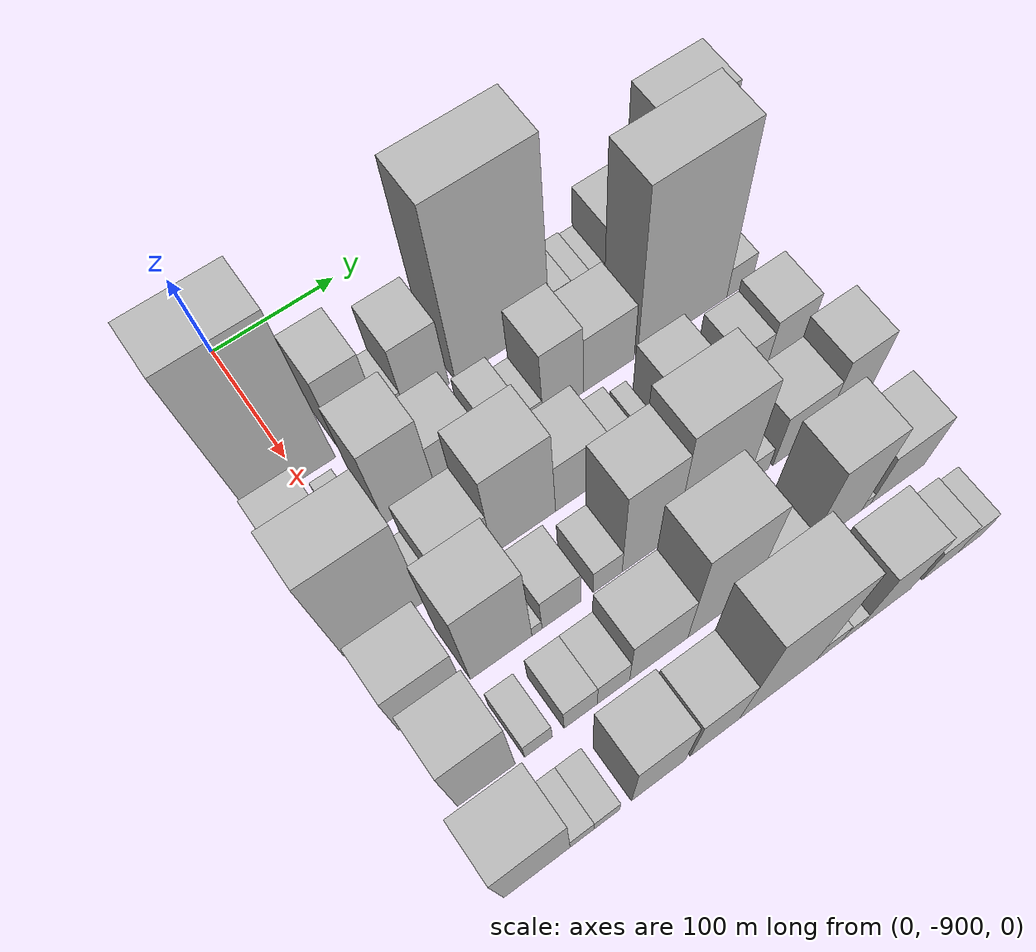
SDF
<sdf version="1.6">
 <world name="default">
  <model name="building_1">
   <static>1</static>
   <pose>100.0000 -905.9487 0 0.000000 0.000000 0.000000</pose>
   <link name="link">
    <pose>0 0 105.00 0 0 0</pose>
    <collision name="collision"><geometry><box><size>40.0000 68.1026 210.0000</size></box></geometry></collision>
    <visual name="visual">
     <cast_shadows>0</cast_shadows>
     <geometry><box><size>40.0000 68.1026 210.0000</size></box></geometry>
     <material>
      <script>
       <uri>model://HANNAS_wall/materials/scripts</uri>
       <uri>model://HANNAS_wall/materials/textures</uri>
       <name>vrc/HANNAS_wall</name>
      </script>
     </material>
    </visual>
   </link>
  </model>
  <model name="building_2">
   <static>1</static>
   <pose>100.0000 -850.0106 0 0.000000 0.000000 0.000000</pose>
   <link name="link">
    <pose>0 0 55.50 0 0 0</pose>
    <collision name="collision"><geometry><box><size>40.0000 33.7737 111.0000</size></box></geometry></collision>
    <visual name="visual">
     <cast_shadows>0</cast_shadows>
     <geometry><box><size>40.0000 33.7737 111.0000</size></box></geometry>
     <material>
      <script>
       <uri>model://HANNAS_wall/materials/scripts</uri>
       <uri>model://HANNAS_wall/materials/textures</uri>
       <name>vrc/HANNAS_wall</name>
      </script>
     </material>
    </visual>
   </link>
  </model>
  <model name="building_3">
   <static>1</static>
   <pose>100.0000 -824.1714 0 0.000000 0.000000 0.000000</pose>
   <link name="link">
    <pose>0 0 16.50 0 0 0</pose>
    <collision name="collision"><geometry><box><size>40.0000 17.9045 33.0000</size></box></geometry></collision>
    <visual name="visual">
     <cast_shadows>0</cast_shadows>
     <geometry><box><size>40.0000 17.9045 33.0000</size></box></geometry>
     <material>
      <script>
       <uri>model://HANNAS_wall/materials/scripts</uri>
       <uri>model://HANNAS_wall/materials/textures</uri>
       <name>vrc/HANNAS_wall</name>
      </script>
     </material>
    </visual>
   </link>
  </model>
  <model name="building_4">
   <static>1</static>
   <pose>100.0000 -797.0768 0 0.000000 0.000000 0.000000</pose>
   <link name="link">
    <pose>0 0 46.50 0 0 0</pose>
    <collision name="collision"><geometry><box><size>40.0000 36.2848 93.0000</size></box></geometry></collision>
    <visual name="visual">
     <cast_shadows>0</cast_shadows>
     <geometry><box><size>40.0000 36.2848 93.0000</size></box></geometry>
     <material>
      <script>
       <uri>model://HANNAS_wall/materials/scripts</uri>
       <uri>model://HANNAS_wall/materials/textures</uri>
       <name>vrc/HANNAS_wall</name>
      </script>
     </material>
    </visual>
   </link>
  </model>
  <model name="building_5">
   <static>1</static>
   <pose>100.0000 -733.5648 0 0.000000 0.000000 0.000000</pose>
   <link name="link">
    <pose>0 0 109.50 0 0 0</pose>
    <collision name="collision"><geometry><box><size>40.0000 80.7393 219.0000</size></box></geometry></collision>
    <visual name="visual">
     <cast_shadows>0</cast_shadows>
     <geometry><box><size>40.0000 80.7393 219.0000</size></box></geometry>
     <material>
      <script>
       <uri>model://HANNAS_wall/materials/scripts</uri>
       <uri>model://HANNAS_wall/materials/textures</uri>
       <name>vrc/HANNAS_wall</name>
      </script>
     </material>
    </visual>
   </link>
  </model>
  <model name="building_6">
   <static>1</static>
   <pose>100.0000 -683.4348 0 0.000000 0.000000 0.000000</pose>
   <link name="link">
    <pose>0 0 18.00 0 0 0</pose>
    <collision name="collision"><geometry><box><size>40.0000 19.5208 36.0000</size></box></geometry></collision>
    <visual name="visual">
     <cast_shadows>0</cast_shadows>
     <geometry><box><size>40.0000 19.5208 36.0000</size></box></geometry>
     <material>
      <script>
       <uri>model://HANNAS_wall/materials/scripts</uri>
       <uri>model://HANNAS_wall/materials/textures</uri>
       <name>vrc/HANNAS_wall</name>
      </script>
     </material>
    </visual>
   </link>
  </model>
  <model name="building_7">
   <static>1</static>
   <pose>100.0000 -665.0878 0 0.000000 0.000000 0.000000</pose>
   <link name="link">
    <pose>0 0 15.00 0 0 0</pose>
    <collision name="collision"><geometry><box><size>40.0000 17.1732 30.0000</size></box></geometry></collision>
    <visual name="visual">
     <cast_shadows>0</cast_shadows>
     <geometry><box><size>40.0000 17.1732 30.0000</size></box></geometry>
     <material>
      <script>
       <uri>model://HANNAS_wall/materials/scripts</uri>
       <uri>model://HANNAS_wall/materials/textures</uri>
       <name>vrc/HANNAS_wall</name>
      </script>
     </material>
    </visual>
   </link>
  </model>
  <model name="building_8">
   <static>1</static>
   <pose>100.0000 -650.2125 0 0.000000 0.000000 0.000000</pose>
   <link name="link">
    <pose>0 0 13.50 0 0 0</pose>
    <collision name="collision"><geometry><box><size>40.0000 12.5774 27.0000</size></box></geometry></collision>
    <visual name="visual">
     <cast_shadows>0</cast_shadows>
     <geometry><box><size>40.0000 12.5774 27.0000</size></box></geometry>
     <material>
      <script>
       <uri>model://HANNAS_wall/materials/scripts</uri>
       <uri>model://HANNAS_wall/materials/textures</uri>
       <name>vrc/HANNAS_wall</name>
      </script>
     </material>
    </visual>
   </link>
  </model>
  <model name="building_9">
   <static>1</static>
   <pose>100.0000 -621.8262 0 0.000000 0.000000 0.000000</pose>
   <link name="link">
    <pose>0 0 37.50 0 0 0</pose>
    <collision name="collision"><geometry><box><size>40.0000 44.1953 75.0000</size></box></geometry></collision>
    <visual name="visual">
     <cast_shadows>0</cast_shadows>
     <geometry><box><size>40.0000 44.1953 75.0000</size></box></geometry>
     <material>
      <script>
       <uri>model://HANNAS_wall/materials/scripts</uri>
       <uri>model://HANNAS_wall/materials/textures</uri>
       <name>vrc/HANNAS_wall</name>
      </script>
     </material>
    </visual>
   </link>
  </model>
  <model name="building_10">
   <static>1</static>
   <pose>100.0000 -568.2450 0 0.000000 0.000000 0.000000</pose>
   <link name="link">
    <pose>0 0 75.00 0 0 0</pose>
    <collision name="collision"><geometry><box><size>40.0000 56.9672 150.0000</size></box></geometry></collision>
    <visual name="visual">
     <cast_shadows>0</cast_shadows>
     <geometry><box><size>40.0000 56.9672 150.0000</size></box></geometry>
     <material>
      <script>
       <uri>model://HANNAS_wall/materials/scripts</uri>
       <uri>model://HANNAS_wall/materials/textures</uri>
       <name>vrc/HANNAS_wall</name>
      </script>
     </material>
    </visual>
   </link>
  </model>
  <model name="building_52">
   <static>1</static>
   <pose>160.0000 -921.2641 0 0.000000 0.000000 0.000000</pose>
   <link name="link">
    <pose>0 0 34.50 0 0 0</pose>
    <collision name="collision"><geometry><box><size>40.0000 37.4718 69.0000</size></box></geometry></collision>
    <visual name="visual">
     <cast_shadows>0</cast_shadows>
     <geometry><box><size>40.0000 37.4718 69.0000</size></box></geometry>
     <material>
      <script>
       <uri>model://HANNAS_wall/materials/scripts</uri>
       <uri>model://HANNAS_wall/materials/textures</uri>
       <name>vrc/HANNAS_wall</name>
      </script>
     </material>
    </visual>
   </link>
  </model>
  <model name="building_53">
   <static>1</static>
   <pose>160.0000 -889.0243 0 0.000000 0.000000 0.000000</pose>
   <link name="link">
    <pose>0 0 16.50 0 0 0</pose>
    <collision name="collision"><geometry><box><size>40.0000 17.0077 33.0000</size></box></geometry></collision>
    <visual name="visual">
     <cast_shadows>0</cast_shadows>
     <geometry><box><size>40.0000 17.0077 33.0000</size></box></geometry>
     <material>
      <script>
       <uri>model://HANNAS_wall/materials/scripts</uri>
       <uri>model://HANNAS_wall/materials/textures</uri>
       <name>vrc/HANNAS_wall</name>
      </script>
     </material>
    </visual>
   </link>
  </model>
  <model name="building_54">
   <static>1</static>
   <pose>160.0000 -850.0451 0 0.000000 0.000000 0.000000</pose>
   <link name="link">
    <pose>0 0 58.50 0 0 0</pose>
    <collision name="collision"><geometry><box><size>40.0000 40.9506 117.0000</size></box></geometry></collision>
    <visual name="visual">
     <cast_shadows>0</cast_shadows>
     <geometry><box><size>40.0000 40.9506 117.0000</size></box></geometry>
     <material>
      <script>
       <uri>model://HANNAS_wall/materials/scripts</uri>
       <uri>model://HANNAS_wall/materials/textures</uri>
       <name>vrc/HANNAS_wall</name>
      </script>
     </material>
    </visual>
   </link>
  </model>
  <model name="building_55">
   <static>1</static>
   <pose>160.0000 -811.3277 0 0.000000 0.000000 0.000000</pose>
   <link name="link">
    <pose>0 0 36.00 0 0 0</pose>
    <collision name="collision"><geometry><box><size>40.0000 36.4842 72.0000</size></box></geometry></collision>
    <visual name="visual">
     <cast_shadows>0</cast_shadows>
     <geometry><box><size>40.0000 36.4842 72.0000</size></box></geometry>
     <material>
      <script>
       <uri>model://HANNAS_wall/materials/scripts</uri>
       <uri>model://HANNAS_wall/materials/textures</uri>
       <name>vrc/HANNAS_wall</name>
      </script>
     </material>
    </visual>
   </link>
  </model>
  <model name="building_56">
   <static>1</static>
   <pose>160.0000 -771.5439 0 0.000000 0.000000 0.000000</pose>
   <link name="link">
    <pose>0 0 25.50 0 0 0</pose>
    <collision name="collision"><geometry><box><size>40.0000 27.0834 51.0000</size></box></geometry></collision>
    <visual name="visual">
     <cast_shadows>0</cast_shadows>
     <geometry><box><size>40.0000 27.0834 51.0000</size></box></geometry>
     <material>
      <script>
       <uri>model://HANNAS_wall/materials/scripts</uri>
       <uri>model://HANNAS_wall/materials/textures</uri>
       <name>vrc/HANNAS_wall</name>
      </script>
     </material>
    </visual>
   </link>
  </model>
  <model name="building_57">
   <static>1</static>
   <pose>160.0000 -749.5987 0 0.000000 0.000000 0.000000</pose>
   <link name="link">
    <pose>0 0 15.00 0 0 0</pose>
    <collision name="collision"><geometry><box><size>40.0000 16.8070 30.0000</size></box></geometry></collision>
    <visual name="visual">
     <cast_shadows>0</cast_shadows>
     <geometry><box><size>40.0000 16.8070 30.0000</size></box></geometry>
     <material>
      <script>
       <uri>model://HANNAS_wall/materials/scripts</uri>
       <uri>model://HANNAS_wall/materials/textures</uri>
       <name>vrc/HANNAS_wall</name>
      </script>
     </material>
    </visual>
   </link>
  </model>
  <model name="building_58">
   <static>1</static>
   <pose>160.0000 -724.1548 0 0.000000 0.000000 0.000000</pose>
   <link name="link">
    <pose>0 0 48.00 0 0 0</pose>
    <collision name="collision"><geometry><box><size>40.0000 34.0807 96.0000</size></box></geometry></collision>
    <visual name="visual">
     <cast_shadows>0</cast_shadows>
     <geometry><box><size>40.0000 34.0807 96.0000</size></box></geometry>
     <material>
      <script>
       <uri>model://HANNAS_wall/materials/scripts</uri>
       <uri>model://HANNAS_wall/materials/textures</uri>
       <name>vrc/HANNAS_wall</name>
      </script>
     </material>
    </visual>
   </link>
  </model>
  <model name="building_59">
   <static>1</static>
   <pose>160.0000 -684.9821 0 0.000000 0.000000 0.000000</pose>
   <link name="link">
    <pose>0 0 39.00 0 0 0</pose>
    <collision name="collision"><geometry><box><size>40.0000 44.2648 78.0000</size></box></geometry></collision>
    <visual name="visual">
     <cast_shadows>0</cast_shadows>
     <geometry><box><size>40.0000 44.2648 78.0000</size></box></geometry>
     <material>
      <script>
       <uri>model://HANNAS_wall/materials/scripts</uri>
       <uri>model://HANNAS_wall/materials/textures</uri>
       <name>vrc/HANNAS_wall</name>
      </script>
     </material>
    </visual>
   </link>
  </model>
  <model name="building_60">
   <static>1</static>
   <pose>160.0000 -619.7478 0 0.000000 0.000000 0.000000</pose>
   <link name="link">
    <pose>0 0 105.00 0 0 0</pose>
    <collision name="collision"><geometry><box><size>40.0000 80.2037 210.0000</size></box></geometry></collision>
    <visual name="visual">
     <cast_shadows>0</cast_shadows>
     <geometry><box><size>40.0000 80.2037 210.0000</size></box></geometry>
     <material>
      <script>
       <uri>model://HANNAS_wall/materials/scripts</uri>
       <uri>model://HANNAS_wall/materials/textures</uri>
       <name>vrc/HANNAS_wall</name>
      </script>
     </material>
    </visual>
   </link>
  </model>
  <model name="building_61">
   <static>1</static>
   <pose>160.0000 -567.9980 0 0.000000 0.000000 0.000000</pose>
   <link name="link">
    <pose>0 0 19.50 0 0 0</pose>
    <collision name="collision"><geometry><box><size>40.0000 23.2958 39.0000</size></box></geometry></collision>
    <visual name="visual">
     <cast_shadows>0</cast_shadows>
     <geometry><box><size>40.0000 23.2958 39.0000</size></box></geometry>
     <material>
      <script>
       <uri>model://HANNAS_wall/materials/scripts</uri>
       <uri>model://HANNAS_wall/materials/textures</uri>
       <name>vrc/HANNAS_wall</name>
      </script>
     </material>
    </visual>
   </link>
  </model>
  <model name="building_103">
   <static>1</static>
   <pose>220.0000 -909.3880 0 0.000000 0.000000 0.000000</pose>
   <link name="link">
    <pose>0 0 78.00 0 0 0</pose>
    <collision name="collision"><geometry><box><size>40.0000 61.2240 156.0000</size></box></geometry></collision>
    <visual name="visual">
     <cast_shadows>0</cast_shadows>
     <geometry><box><size>40.0000 61.2240 156.0000</size></box></geometry>
     <material>
      <script>
       <uri>model://HANNAS_wall/materials/scripts</uri>
       <uri>model://HANNAS_wall/materials/textures</uri>
       <name>vrc/HANNAS_wall</name>
      </script>
     </material>
    </visual>
   </link>
  </model>
  <model name="building_104">
   <static>1</static>
   <pose>220.0000 -873.1271 0 0.000000 0.000000 0.000000</pose>
   <link name="link">
    <pose>0 0 13.50 0 0 0</pose>
    <collision name="collision"><geometry><box><size>40.0000 11.2979 27.0000</size></box></geometry></collision>
    <visual name="visual">
     <cast_shadows>0</cast_shadows>
     <geometry><box><size>40.0000 11.2979 27.0000</size></box></geometry>
     <material>
      <script>
       <uri>model://HANNAS_wall/materials/scripts</uri>
       <uri>model://HANNAS_wall/materials/textures</uri>
       <name>vrc/HANNAS_wall</name>
      </script>
     </material>
    </visual>
   </link>
  </model>
  <model name="building_105">
   <static>1</static>
   <pose>220.0000 -845.8460 0 0.000000 0.000000 0.000000</pose>
   <link name="link">
    <pose>0 0 37.50 0 0 0</pose>
    <collision name="collision"><geometry><box><size>40.0000 43.2644 75.0000</size></box></geometry></collision>
    <visual name="visual">
     <cast_shadows>0</cast_shadows>
     <geometry><box><size>40.0000 43.2644 75.0000</size></box></geometry>
     <material>
      <script>
       <uri>model://HANNAS_wall/materials/scripts</uri>
       <uri>model://HANNAS_wall/materials/textures</uri>
       <name>vrc/HANNAS_wall</name>
      </script>
     </material>
    </visual>
   </link>
  </model>
  <model name="building_106">
   <static>1</static>
   <pose>220.0000 -798.8529 0 0.000000 0.000000 0.000000</pose>
   <link name="link">
    <pose>0 0 66.00 0 0 0</pose>
    <collision name="collision"><geometry><box><size>40.0000 50.7218 132.0000</size></box></geometry></collision>
    <visual name="visual">
     <cast_shadows>0</cast_shadows>
     <geometry><box><size>40.0000 50.7218 132.0000</size></box></geometry>
     <material>
      <script>
       <uri>model://HANNAS_wall/materials/scripts</uri>
       <uri>model://HANNAS_wall/materials/textures</uri>
       <name>vrc/HANNAS_wall</name>
      </script>
     </material>
    </visual>
   </link>
  </model>
  <model name="building_107">
   <static>1</static>
   <pose>220.0000 -752.6269 0 0.000000 0.000000 0.000000</pose>
   <link name="link">
    <pose>0 0 39.00 0 0 0</pose>
    <collision name="collision"><geometry><box><size>40.0000 41.7302 78.0000</size></box></geometry></collision>
    <visual name="visual">
     <cast_shadows>0</cast_shadows>
     <geometry><box><size>40.0000 41.7302 78.0000</size></box></geometry>
     <material>
      <script>
       <uri>model://HANNAS_wall/materials/scripts</uri>
       <uri>model://HANNAS_wall/materials/textures</uri>
       <name>vrc/HANNAS_wall</name>
      </script>
     </material>
    </visual>
   </link>
  </model>
  <model name="building_108">
   <static>1</static>
   <pose>220.0000 -716.5032 0 0.000000 0.000000 0.000000</pose>
   <link name="link">
    <pose>0 0 21.00 0 0 0</pose>
    <collision name="collision"><geometry><box><size>40.0000 22.5170 42.0000</size></box></geometry></collision>
    <visual name="visual">
     <cast_shadows>0</cast_shadows>
     <geometry><box><size>40.0000 22.5170 42.0000</size></box></geometry>
     <material>
      <script>
       <uri>model://HANNAS_wall/materials/scripts</uri>
       <uri>model://HANNAS_wall/materials/textures</uri>
       <name>vrc/HANNAS_wall</name>
      </script>
     </material>
    </visual>
   </link>
  </model>
  <model name="building_109">
   <static>1</static>
   <pose>220.0000 -692.6403 0 0.000000 0.000000 0.000000</pose>
   <link name="link">
    <pose>0 0 13.50 0 0 0</pose>
    <collision name="collision"><geometry><box><size>40.0000 13.2088 27.0000</size></box></geometry></collision>
    <visual name="visual">
     <cast_shadows>0</cast_shadows>
     <geometry><box><size>40.0000 13.2088 27.0000</size></box></geometry>
     <material>
      <script>
       <uri>model://HANNAS_wall/materials/scripts</uri>
       <uri>model://HANNAS_wall/materials/textures</uri>
       <name>vrc/HANNAS_wall</name>
      </script>
     </material>
    </visual>
   </link>
  </model>
  <model name="building_110">
   <static>1</static>
   <pose>220.0000 -659.6676 0 0.000000 0.000000 0.000000</pose>
   <link name="link">
    <pose>0 0 36.00 0 0 0</pose>
    <collision name="collision"><geometry><box><size>40.0000 38.7366 72.0000</size></box></geometry></collision>
    <visual name="visual">
     <cast_shadows>0</cast_shadows>
     <geometry><box><size>40.0000 38.7366 72.0000</size></box></geometry>
     <material>
      <script>
       <uri>model://HANNAS_wall/materials/scripts</uri>
       <uri>model://HANNAS_wall/materials/textures</uri>
       <name>vrc/HANNAS_wall</name>
      </script>
     </material>
    </visual>
   </link>
  </model>
  <model name="building_111">
   <static>1</static>
   <pose>220.0000 -626.9376 0 0.000000 0.000000 0.000000</pose>
   <link name="link">
    <pose>0 0 12.00 0 0 0</pose>
    <collision name="collision"><geometry><box><size>40.0000 10.7232 24.0000</size></box></geometry></collision>
    <visual name="visual">
     <cast_shadows>0</cast_shadows>
     <geometry><box><size>40.0000 10.7232 24.0000</size></box></geometry>
     <material>
      <script>
       <uri>model://HANNAS_wall/materials/scripts</uri>
       <uri>model://HANNAS_wall/materials/textures</uri>
       <name>vrc/HANNAS_wall</name>
      </script>
     </material>
    </visual>
   </link>
  </model>
  <model name="building_112">
   <static>1</static>
   <pose>220.0000 -606.7172 0 0.000000 0.000000 0.000000</pose>
   <link name="link">
    <pose>0 0 25.50 0 0 0</pose>
    <collision name="collision"><geometry><box><size>40.0000 29.7176 51.0000</size></box></geometry></collision>
    <visual name="visual">
     <cast_shadows>0</cast_shadows>
     <geometry><box><size>40.0000 29.7176 51.0000</size></box></geometry>
     <material>
      <script>
       <uri>model://HANNAS_wall/materials/scripts</uri>
       <uri>model://HANNAS_wall/materials/textures</uri>
       <name>vrc/HANNAS_wall</name>
      </script>
     </material>
    </visual>
   </link>
  </model>
  <model name="building_113">
   <static>1</static>
   <pose>220.0000 -573.0822 0 0.000000 0.000000 0.000000</pose>
   <link name="link">
    <pose>0 0 33.00 0 0 0</pose>
    <collision name="collision"><geometry><box><size>40.0000 37.5525 66.0000</size></box></geometry></collision>
    <visual name="visual">
     <cast_shadows>0</cast_shadows>
     <geometry><box><size>40.0000 37.5525 66.0000</size></box></geometry>
     <material>
      <script>
       <uri>model://HANNAS_wall/materials/scripts</uri>
       <uri>model://HANNAS_wall/materials/textures</uri>
       <name>vrc/HANNAS_wall</name>
      </script>
     </material>
    </visual>
   </link>
  </model>
  <model name="building_155">
   <static>1</static>
   <pose>280.0000 -912.9552 0 0.000000 0.000000 0.000000</pose>
   <link name="link">
    <pose>0 0 42.00 0 0 0</pose>
    <collision name="collision"><geometry><box><size>40.0000 48.0895 84.0000</size></box></geometry></collision>
    <visual name="visual">
     <cast_shadows>0</cast_shadows>
     <geometry><box><size>40.0000 48.0895 84.0000</size></box></geometry>
     <material>
      <script>
       <uri>model://HANNAS_wall/materials/scripts</uri>
       <uri>model://HANNAS_wall/materials/textures</uri>
       <name>vrc/HANNAS_wall</name>
      </script>
     </material>
    </visual>
   </link>
  </model>
  <model name="building_156">
   <static>1</static>
   <pose>280.0000 -859.0225 0 0.000000 0.000000 0.000000</pose>
   <link name="link">
    <pose>0 0 70.50 0 0 0</pose>
    <collision name="collision"><geometry><box><size>40.0000 47.7758 141.0000</size></box></geometry></collision>
    <visual name="visual">
     <cast_shadows>0</cast_shadows>
     <geometry><box><size>40.0000 47.7758 141.0000</size></box></geometry>
     <material>
      <script>
       <uri>model://HANNAS_wall/materials/scripts</uri>
       <uri>model://HANNAS_wall/materials/textures</uri>
       <name>vrc/HANNAS_wall</name>
      </script>
     </material>
    </visual>
   </link>
  </model>
  <model name="building_157">
   <static>1</static>
   <pose>280.0000 -831.1087 0 0.000000 0.000000 0.000000</pose>
   <link name="link">
    <pose>0 0 9.00 0 0 0</pose>
    <collision name="collision"><geometry><box><size>40.0000 8.0518 18.0000</size></box></geometry></collision>
    <visual name="visual">
     <cast_shadows>0</cast_shadows>
     <geometry><box><size>40.0000 8.0518 18.0000</size></box></geometry>
     <material>
      <script>
       <uri>model://HANNAS_wall/materials/scripts</uri>
       <uri>model://HANNAS_wall/materials/textures</uri>
       <name>vrc/HANNAS_wall</name>
      </script>
     </material>
    </visual>
   </link>
  </model>
  <model name="building_158">
   <static>1</static>
   <pose>280.0000 -811.6672 0 0.000000 0.000000 0.000000</pose>
   <link name="link">
    <pose>0 0 30.00 0 0 0</pose>
    <collision name="collision"><geometry><box><size>40.0000 30.8314 60.0000</size></box></geometry></collision>
    <visual name="visual">
     <cast_shadows>0</cast_shadows>
     <geometry><box><size>40.0000 30.8314 60.0000</size></box></geometry>
     <material>
      <script>
       <uri>model://HANNAS_wall/materials/scripts</uri>
       <uri>model://HANNAS_wall/materials/textures</uri>
       <name>vrc/HANNAS_wall</name>
      </script>
     </material>
    </visual>
   </link>
  </model>
  <model name="building_159">
   <static>1</static>
   <pose>280.0000 -774.5711 0 0.000000 0.000000 0.000000</pose>
   <link name="link">
    <pose>0 0 21.00 0 0 0</pose>
    <collision name="collision"><geometry><box><size>40.0000 23.3608 42.0000</size></box></geometry></collision>
    <visual name="visual">
     <cast_shadows>0</cast_shadows>
     <geometry><box><size>40.0000 23.3608 42.0000</size></box></geometry>
     <material>
      <script>
       <uri>model://HANNAS_wall/materials/scripts</uri>
       <uri>model://HANNAS_wall/materials/textures</uri>
       <name>vrc/HANNAS_wall</name>
      </script>
     </material>
    </visual>
   </link>
  </model>
  <model name="building_160">
   <static>1</static>
   <pose>280.0000 -740.6245 0 0.000000 0.000000 0.000000</pose>
   <link name="link">
    <pose>0 0 70.50 0 0 0</pose>
    <collision name="collision"><geometry><box><size>40.0000 44.5322 141.0000</size></box></geometry></collision>
    <visual name="visual">
     <cast_shadows>0</cast_shadows>
     <geometry><box><size>40.0000 44.5322 141.0000</size></box></geometry>
     <material>
      <script>
       <uri>model://HANNAS_wall/materials/scripts</uri>
       <uri>model://HANNAS_wall/materials/textures</uri>
       <name>vrc/HANNAS_wall</name>
      </script>
     </material>
    </visual>
   </link>
  </model>
  <model name="building_161">
   <static>1</static>
   <pose>280.0000 -687.9659 0 0.000000 0.000000 0.000000</pose>
   <link name="link">
    <pose>0 0 82.50 0 0 0</pose>
    <collision name="collision"><geometry><box><size>40.0000 60.7850 165.0000</size></box></geometry></collision>
    <visual name="visual">
     <cast_shadows>0</cast_shadows>
     <geometry><box><size>40.0000 60.7850 165.0000</size></box></geometry>
     <material>
      <script>
       <uri>model://HANNAS_wall/materials/scripts</uri>
       <uri>model://HANNAS_wall/materials/textures</uri>
       <name>vrc/HANNAS_wall</name>
      </script>
     </material>
    </visual>
   </link>
  </model>
  <model name="building_162">
   <static>1</static>
   <pose>280.0000 -648.3506 0 0.000000 0.000000 0.000000</pose>
   <link name="link">
    <pose>0 0 18.00 0 0 0</pose>
    <collision name="collision"><geometry><box><size>40.0000 18.4456 36.0000</size></box></geometry></collision>
    <visual name="visual">
     <cast_shadows>0</cast_shadows>
     <geometry><box><size>40.0000 18.4456 36.0000</size></box></geometry>
     <material>
      <script>
       <uri>model://HANNAS_wall/materials/scripts</uri>
       <uri>model://HANNAS_wall/materials/textures</uri>
       <name>vrc/HANNAS_wall</name>
      </script>
     </material>
    </visual>
   </link>
  </model>
  <model name="building_163">
   <static>1</static>
   <pose>280.0000 -613.1263 0 0.000000 0.000000 0.000000</pose>
   <link name="link">
    <pose>0 0 39.00 0 0 0</pose>
    <collision name="collision"><geometry><box><size>40.0000 44.0031 78.0000</size></box></geometry></collision>
    <visual name="visual">
     <cast_shadows>0</cast_shadows>
     <geometry><box><size>40.0000 44.0031 78.0000</size></box></geometry>
     <material>
      <script>
       <uri>model://HANNAS_wall/materials/scripts</uri>
       <uri>model://HANNAS_wall/materials/textures</uri>
       <name>vrc/HANNAS_wall</name>
      </script>
     </material>
    </visual>
   </link>
  </model>
  <model name="building_164">
   <static>1</static>
   <pose>280.0000 -572.3923 0 0.000000 0.000000 0.000000</pose>
   <link name="link">
    <pose>0 0 52.50 0 0 0</pose>
    <collision name="collision"><geometry><box><size>40.0000 37.4648 105.0000</size></box></geometry></collision>
    <visual name="visual">
     <cast_shadows>0</cast_shadows>
     <geometry><box><size>40.0000 37.4648 105.0000</size></box></geometry>
     <material>
      <script>
       <uri>model://HANNAS_wall/materials/scripts</uri>
       <uri>model://HANNAS_wall/materials/textures</uri>
       <name>vrc/HANNAS_wall</name>
      </script>
     </material>
    </visual>
   </link>
  </model>
  <model name="building_206">
   <static>1</static>
   <pose>340.0000 -911.4617 0 0.000000 0.000000 0.000000</pose>
   <link name="link">
    <pose>0 0 63.00 0 0 0</pose>
    <collision name="collision"><geometry><box><size>40.0000 43.0765 126.0000</size></box></geometry></collision>
    <visual name="visual">
     <cast_shadows>0</cast_shadows>
     <geometry><box><size>40.0000 43.0765 126.0000</size></box></geometry>
     <material>
      <script>
       <uri>model://HANNAS_wall/materials/scripts</uri>
       <uri>model://HANNAS_wall/materials/textures</uri>
       <name>vrc/HANNAS_wall</name>
      </script>
     </material>
    </visual>
   </link>
  </model>
  <model name="building_207">
   <static>1</static>
   <pose>340.0000 -872.3267 0 0.000000 0.000000 0.000000</pose>
   <link name="link">
    <pose>0 0 18.00 0 0 0</pose>
    <collision name="collision"><geometry><box><size>40.0000 21.1935 36.0000</size></box></geometry></collision>
    <visual name="visual">
     <cast_shadows>0</cast_shadows>
     <geometry><box><size>40.0000 21.1935 36.0000</size></box></geometry>
     <material>
      <script>
       <uri>model://HANNAS_wall/materials/scripts</uri>
       <uri>model://HANNAS_wall/materials/textures</uri>
       <name>vrc/HANNAS_wall</name>
      </script>
     </material>
    </visual>
   </link>
  </model>
  <model name="building_208">
   <static>1</static>
   <pose>340.0000 -839.8515 0 0.000000 0.000000 0.000000</pose>
   <link name="link">
    <pose>0 0 24.00 0 0 0</pose>
    <collision name="collision"><geometry><box><size>40.0000 25.7570 48.0000</size></box></geometry></collision>
    <visual name="visual">
     <cast_shadows>0</cast_shadows>
     <geometry><box><size>40.0000 25.7570 48.0000</size></box></geometry>
     <material>
      <script>
       <uri>model://HANNAS_wall/materials/scripts</uri>
       <uri>model://HANNAS_wall/materials/textures</uri>
       <name>vrc/HANNAS_wall</name>
      </script>
     </material>
    </visual>
   </link>
  </model>
  <model name="building_209">
   <static>1</static>
   <pose>340.0000 -814.3358 0 0.000000 0.000000 0.000000</pose>
   <link name="link">
    <pose>0 0 24.00 0 0 0</pose>
    <collision name="collision"><geometry><box><size>40.0000 25.2744 48.0000</size></box></geometry></collision>
    <visual name="visual">
     <cast_shadows>0</cast_shadows>
     <geometry><box><size>40.0000 25.2744 48.0000</size></box></geometry>
     <material>
      <script>
       <uri>model://HANNAS_wall/materials/scripts</uri>
       <uri>model://HANNAS_wall/materials/textures</uri>
       <name>vrc/HANNAS_wall</name>
      </script>
     </material>
    </visual>
   </link>
  </model>
  <model name="building_210">
   <static>1</static>
   <pose>340.0000 -778.2928 0 0.000000 0.000000 0.000000</pose>
   <link name="link">
    <pose>0 0 43.50 0 0 0</pose>
    <collision name="collision"><geometry><box><size>40.0000 46.8116 87.0000</size></box></geometry></collision>
    <visual name="visual">
     <cast_shadows>0</cast_shadows>
     <geometry><box><size>40.0000 46.8116 87.0000</size></box></geometry>
     <material>
      <script>
       <uri>model://HANNAS_wall/materials/scripts</uri>
       <uri>model://HANNAS_wall/materials/textures</uri>
       <name>vrc/HANNAS_wall</name>
      </script>
     </material>
    </visual>
   </link>
  </model>
  <model name="building_211">
   <static>1</static>
   <pose>340.0000 -727.7533 0 0.000000 0.000000 0.000000</pose>
   <link name="link">
    <pose>0 0 82.50 0 0 0</pose>
    <collision name="collision"><geometry><box><size>40.0000 54.2673 165.0000</size></box></geometry></collision>
    <visual name="visual">
     <cast_shadows>0</cast_shadows>
     <geometry><box><size>40.0000 54.2673 165.0000</size></box></geometry>
     <material>
      <script>
       <uri>model://HANNAS_wall/materials/scripts</uri>
       <uri>model://HANNAS_wall/materials/textures</uri>
       <name>vrc/HANNAS_wall</name>
      </script>
     </material>
    </visual>
   </link>
  </model>
  <model name="building_212">
   <static>1</static>
   <pose>340.0000 -682.8207 0 0.000000 0.000000 0.000000</pose>
   <link name="link">
    <pose>0 0 31.50 0 0 0</pose>
    <collision name="collision"><geometry><box><size>40.0000 35.5979 63.0000</size></box></geometry></collision>
    <visual name="visual">
     <cast_shadows>0</cast_shadows>
     <geometry><box><size>40.0000 35.5979 63.0000</size></box></geometry>
     <material>
      <script>
       <uri>model://HANNAS_wall/materials/scripts</uri>
       <uri>model://HANNAS_wall/materials/textures</uri>
       <name>vrc/HANNAS_wall</name>
      </script>
     </material>
    </visual>
   </link>
  </model>
  <model name="building_213">
   <static>1</static>
   <pose>340.0000 -631.3113 0 0.000000 0.000000 0.000000</pose>
   <link name="link">
    <pose>0 0 70.50 0 0 0</pose>
    <collision name="collision"><geometry><box><size>40.0000 47.4210 141.0000</size></box></geometry></collision>
    <visual name="visual">
     <cast_shadows>0</cast_shadows>
     <geometry><box><size>40.0000 47.4210 141.0000</size></box></geometry>
     <material>
      <script>
       <uri>model://HANNAS_wall/materials/scripts</uri>
       <uri>model://HANNAS_wall/materials/textures</uri>
       <name>vrc/HANNAS_wall</name>
      </script>
     </material>
    </visual>
   </link>
  </model>
  <model name="building_214">
   <static>1</static>
   <pose>340.0000 -603.6593 0 0.000000 0.000000 0.000000</pose>
   <link name="link">
    <pose>0 0 9.00 0 0 0</pose>
    <collision name="collision"><geometry><box><size>40.0000 7.8829 18.0000</size></box></geometry></collision>
    <visual name="visual">
     <cast_shadows>0</cast_shadows>
     <geometry><box><size>40.0000 7.8829 18.0000</size></box></geometry>
     <material>
      <script>
       <uri>model://HANNAS_wall/materials/scripts</uri>
       <uri>model://HANNAS_wall/materials/textures</uri>
       <name>vrc/HANNAS_wall</name>
      </script>
     </material>
    </visual>
   </link>
  </model>
  <model name="building_215">
   <static>1</static>
   <pose>340.0000 -575.8074 0 0.000000 0.000000 0.000000</pose>
   <link name="link">
    <pose>0 0 40.50 0 0 0</pose>
    <collision name="collision"><geometry><box><size>40.0000 47.8208 81.0000</size></box></geometry></collision>
    <visual name="visual">
     <cast_shadows>0</cast_shadows>
     <geometry><box><size>40.0000 47.8208 81.0000</size></box></geometry>
     <material>
      <script>
       <uri>model://HANNAS_wall/materials/scripts</uri>
       <uri>model://HANNAS_wall/materials/textures</uri>
       <name>vrc/HANNAS_wall</name>
      </script>
     </material>
    </visual>
   </link>
  </model>
  <model name="building_256">
   <static>1</static>
   <pose>400.0000 -915.7129 0 0.000000 0.000000 0.000000</pose>
   <link name="link">
    <pose>0 0 66.00 0 0 0</pose>
    <collision name="collision"><geometry><box><size>40.0000 48.5742 132.0000</size></box></geometry></collision>
    <visual name="visual">
     <cast_shadows>0</cast_shadows>
     <geometry><box><size>40.0000 48.5742 132.0000</size></box></geometry>
     <material>
      <script>
       <uri>model://HANNAS_wall/materials/scripts</uri>
       <uri>model://HANNAS_wall/materials/textures</uri>
       <name>vrc/HANNAS_wall</name>
      </script>
     </material>
    </visual>
   </link>
  </model>
  <model name="building_257">
   <static>1</static>
   <pose>400.0000 -882.3933 0 0.000000 0.000000 0.000000</pose>
   <link name="link">
    <pose>0 0 16.50 0 0 0</pose>
    <collision name="collision"><geometry><box><size>40.0000 18.0649 33.0000</size></box></geometry></collision>
    <visual name="visual">
     <cast_shadows>0</cast_shadows>
     <geometry><box><size>40.0000 18.0649 33.0000</size></box></geometry>
     <material>
      <script>
       <uri>model://HANNAS_wall/materials/scripts</uri>
       <uri>model://HANNAS_wall/materials/textures</uri>
       <name>vrc/HANNAS_wall</name>
      </script>
     </material>
    </visual>
   </link>
  </model>
  <model name="building_258">
   <static>1</static>
   <pose>400.0000 -863.7272 0 0.000000 0.000000 0.000000</pose>
   <link name="link">
    <pose>0 0 16.50 0 0 0</pose>
    <collision name="collision"><geometry><box><size>40.0000 19.2674 33.0000</size></box></geometry></collision>
    <visual name="visual">
     <cast_shadows>0</cast_shadows>
     <geometry><box><size>40.0000 19.2674 33.0000</size></box></geometry>
     <material>
      <script>
       <uri>model://HANNAS_wall/materials/scripts</uri>
       <uri>model://HANNAS_wall/materials/textures</uri>
       <name>vrc/HANNAS_wall</name>
      </script>
     </material>
    </visual>
   </link>
  </model>
  <model name="building_259">
   <static>1</static>
   <pose>400.0000 -824.2685 0 0.000000 0.000000 0.000000</pose>
   <link name="link">
    <pose>0 0 58.50 0 0 0</pose>
    <collision name="collision"><geometry><box><size>40.0000 41.6501 117.0000</size></box></geometry></collision>
    <visual name="visual">
     <cast_shadows>0</cast_shadows>
     <geometry><box><size>40.0000 41.6501 117.0000</size></box></geometry>
     <material>
      <script>
       <uri>model://HANNAS_wall/materials/scripts</uri>
       <uri>model://HANNAS_wall/materials/textures</uri>
       <name>vrc/HANNAS_wall</name>
      </script>
     </material>
    </visual>
   </link>
  </model>
  <model name="building_260">
   <static>1</static>
   <pose>400.0000 -780.0350 0 0.000000 0.000000 0.000000</pose>
   <link name="link">
    <pose>0 0 51.00 0 0 0</pose>
    <collision name="collision"><geometry><box><size>40.0000 38.8170 102.0000</size></box></geometry></collision>
    <visual name="visual">
     <cast_shadows>0</cast_shadows>
     <geometry><box><size>40.0000 38.8170 102.0000</size></box></geometry>
     <material>
      <script>
       <uri>model://HANNAS_wall/materials/scripts</uri>
       <uri>model://HANNAS_wall/materials/textures</uri>
       <name>vrc/HANNAS_wall</name>
      </script>
     </material>
    </visual>
   </link>
  </model>
  <model name="building_261">
   <static>1</static>
   <pose>400.0000 -729.0647 0 0.000000 0.000000 0.000000</pose>
   <link name="link">
    <pose>0 0 99.00 0 0 0</pose>
    <collision name="collision"><geometry><box><size>40.0000 63.1236 198.0000</size></box></geometry></collision>
    <visual name="visual">
     <cast_shadows>0</cast_shadows>
     <geometry><box><size>40.0000 63.1236 198.0000</size></box></geometry>
     <material>
      <script>
       <uri>model://HANNAS_wall/materials/scripts</uri>
       <uri>model://HANNAS_wall/materials/textures</uri>
       <name>vrc/HANNAS_wall</name>
      </script>
     </material>
    </visual>
   </link>
  </model>
  <model name="building_262">
   <static>1</static>
   <pose>400.0000 -687.0284 0 0.000000 0.000000 0.000000</pose>
   <link name="link">
    <pose>0 0 19.50 0 0 0</pose>
    <collision name="collision"><geometry><box><size>40.0000 20.9491 39.0000</size></box></geometry></collision>
    <visual name="visual">
     <cast_shadows>0</cast_shadows>
     <geometry><box><size>40.0000 20.9491 39.0000</size></box></geometry>
     <material>
      <script>
       <uri>model://HANNAS_wall/materials/scripts</uri>
       <uri>model://HANNAS_wall/materials/textures</uri>
       <name>vrc/HANNAS_wall</name>
      </script>
     </material>
    </visual>
   </link>
  </model>
  <model name="building_263">
   <static>1</static>
   <pose>400.0000 -668.4085 0 0.000000 0.000000 0.000000</pose>
   <link name="link">
    <pose>0 0 15.00 0 0 0</pose>
    <collision name="collision"><geometry><box><size>40.0000 16.2906 30.0000</size></box></geometry></collision>
    <visual name="visual">
     <cast_shadows>0</cast_shadows>
     <geometry><box><size>40.0000 16.2906 30.0000</size></box></geometry>
     <material>
      <script>
       <uri>model://HANNAS_wall/materials/scripts</uri>
       <uri>model://HANNAS_wall/materials/textures</uri>
       <name>vrc/HANNAS_wall</name>
      </script>
     </material>
    </visual>
   </link>
  </model>
  <model name="building_264">
   <static>1</static>
   <pose>400.0000 -638.7300 0 0.000000 0.000000 0.000000</pose>
   <link name="link">
    <pose>0 0 54.00 0 0 0</pose>
    <collision name="collision"><geometry><box><size>40.0000 43.0665 108.0000</size></box></geometry></collision>
    <visual name="visual">
     <cast_shadows>0</cast_shadows>
     <geometry><box><size>40.0000 43.0665 108.0000</size></box></geometry>
     <material>
      <script>
       <uri>model://HANNAS_wall/materials/scripts</uri>
       <uri>model://HANNAS_wall/materials/textures</uri>
       <name>vrc/HANNAS_wall</name>
      </script>
     </material>
    </visual>
   </link>
  </model>
  <model name="building_265">
   <static>1</static>
   <pose>400.0000 -591.8578 0 0.000000 0.000000 0.000000</pose>
   <link name="link">
    <pose>0 0 28.50 0 0 0</pose>
    <collision name="collision"><geometry><box><size>40.0000 30.6779 57.0000</size></box></geometry></collision>
    <visual name="visual">
     <cast_shadows>0</cast_shadows>
     <geometry><box><size>40.0000 30.6779 57.0000</size></box></geometry>
     <material>
      <script>
       <uri>model://HANNAS_wall/materials/scripts</uri>
       <uri>model://HANNAS_wall/materials/textures</uri>
       <name>vrc/HANNAS_wall</name>
      </script>
     </material>
    </visual>
   </link>
  </model>
  <model name="building_266">
   <static>1</static>
   <pose>400.0000 -565.4075 0 0.000000 0.000000 0.000000</pose>
   <link name="link">
    <pose>0 0 21.00 0 0 0</pose>
    <collision name="collision"><geometry><box><size>40.0000 22.2228 42.0000</size></box></geometry></collision>
    <visual name="visual">
     <cast_shadows>0</cast_shadows>
     <geometry><box><size>40.0000 22.2228 42.0000</size></box></geometry>
     <material>
      <script>
       <uri>model://HANNAS_wall/materials/scripts</uri>
       <uri>model://HANNAS_wall/materials/textures</uri>
       <name>vrc/HANNAS_wall</name>
      </script>
     </material>
    </visual>
   </link>
  </model>
 </world>
</sdf>
